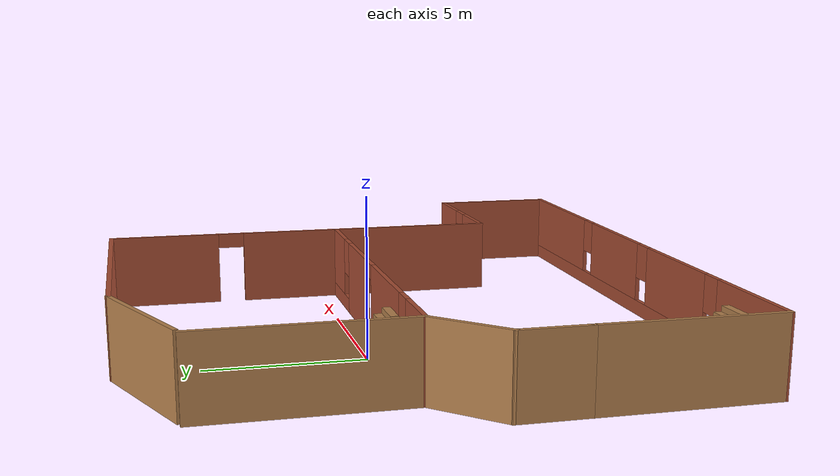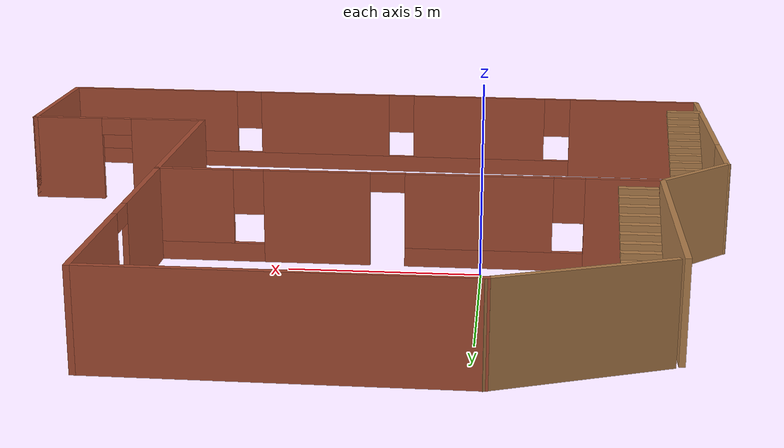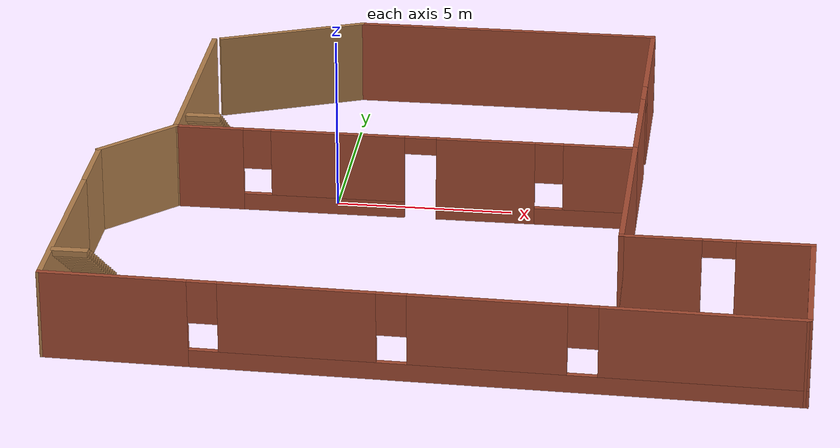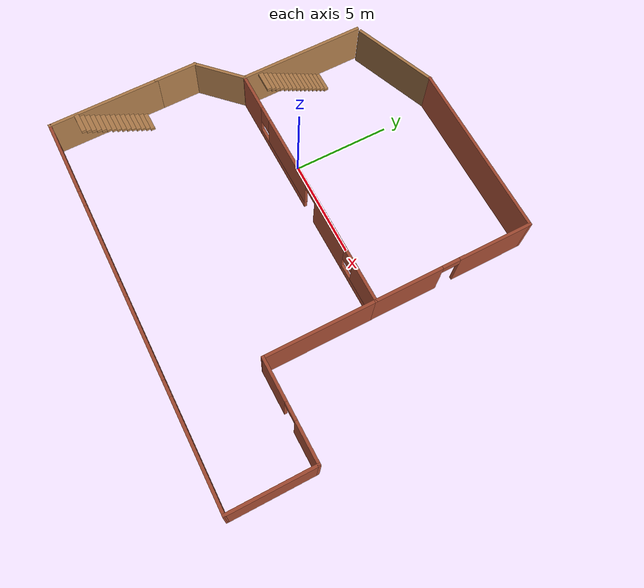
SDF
<?xml version='1.0'?>
<sdf version='1.6'>
  <model name='Mundo_pequeno'>
    <pose frame=''>3.60353 -1.53138 0 0 -0 0</pose>
    <link name='Stairs_1'>
      <visual name='Stairs_1_Visual_0'>
        <pose frame=''>-7.50565 4.98845 0.083333 0 -0 0</pose>
        <geometry>
          <box>
            <size>1 0.233333 0.166667</size>
          </box>
        </geometry>
        <material>
          <script>
            <uri>file://media/materials/scripts/gazebo.material</uri>
            <name>Gazebo/Wood</name>
          </script>
          <ambient>1 1 1 1</ambient>
        </material>
        <meta>
          <layer>0</layer>
        </meta>
      </visual>
      <collision name='Stairs_1_Collision_0'>
        <geometry>
          <box>
            <size>1 0.233333 0.166667</size>
          </box>
        </geometry>
        <pose frame=''>-7.50565 4.98845 0.083333 0 -0 0</pose>
      </collision>
      <visual name='Stairs_1_Visual_1'>
        <pose frame=''>-7.50565 4.75511 0.25 0 -0 0</pose>
        <geometry>
          <box>
            <size>1 0.233333 0.166667</size>
          </box>
        </geometry>
        <material>
          <script>
            <uri>file://media/materials/scripts/gazebo.material</uri>
            <name>Gazebo/Wood</name>
          </script>
          <ambient>1 1 1 1</ambient>
        </material>
        <meta>
          <layer>0</layer>
        </meta>
      </visual>
      <collision name='Stairs_1_Collision_1'>
        <geometry>
          <box>
            <size>1 0.233333 0.166667</size>
          </box>
        </geometry>
        <pose frame=''>-7.50565 4.75511 0.25 0 -0 0</pose>
      </collision>
      <visual name='Stairs_1_Visual_2'>
        <pose frame=''>-7.50565 4.52178 0.416667 0 -0 0</pose>
        <geometry>
          <box>
            <size>1 0.233333 0.166667</size>
          </box>
        </geometry>
        <material>
          <script>
            <uri>file://media/materials/scripts/gazebo.material</uri>
            <name>Gazebo/Wood</name>
          </script>
          <ambient>1 1 1 1</ambient>
        </material>
        <meta>
          <layer>0</layer>
        </meta>
      </visual>
      <collision name='Stairs_1_Collision_2'>
        <geometry>
          <box>
            <size>1 0.233333 0.166667</size>
          </box>
        </geometry>
        <pose frame=''>-7.50565 4.52178 0.416667 0 -0 0</pose>
      </collision>
      <visual name='Stairs_1_Visual_3'>
        <pose frame=''>-7.50565 4.28845 0.583333 0 -0 0</pose>
        <geometry>
          <box>
            <size>1 0.233333 0.166667</size>
          </box>
        </geometry>
        <material>
          <script>
            <uri>file://media/materials/scripts/gazebo.material</uri>
            <name>Gazebo/Wood</name>
          </script>
          <ambient>1 1 1 1</ambient>
        </material>
        <meta>
          <layer>0</layer>
        </meta>
      </visual>
      <collision name='Stairs_1_Collision_3'>
        <geometry>
          <box>
            <size>1 0.233333 0.166667</size>
          </box>
        </geometry>
        <pose frame=''>-7.50565 4.28845 0.583333 0 -0 0</pose>
      </collision>
      <visual name='Stairs_1_Visual_4'>
        <pose frame=''>-7.50565 4.05511 0.75 0 -0 0</pose>
        <geometry>
          <box>
            <size>1 0.233333 0.166667</size>
          </box>
        </geometry>
        <material>
          <script>
            <uri>file://media/materials/scripts/gazebo.material</uri>
            <name>Gazebo/Wood</name>
          </script>
          <ambient>1 1 1 1</ambient>
        </material>
        <meta>
          <layer>0</layer>
        </meta>
      </visual>
      <collision name='Stairs_1_Collision_4'>
        <geometry>
          <box>
            <size>1 0.233333 0.166667</size>
          </box>
        </geometry>
        <pose frame=''>-7.50565 4.05511 0.75 0 -0 0</pose>
      </collision>
      <visual name='Stairs_1_Visual_5'>
        <pose frame=''>-7.50565 3.82178 0.916667 0 -0 0</pose>
        <geometry>
          <box>
            <size>1 0.233333 0.166667</size>
          </box>
        </geometry>
        <material>
          <script>
            <uri>file://media/materials/scripts/gazebo.material</uri>
            <name>Gazebo/Wood</name>
          </script>
          <ambient>1 1 1 1</ambient>
        </material>
        <meta>
          <layer>0</layer>
        </meta>
      </visual>
      <collision name='Stairs_1_Collision_5'>
        <geometry>
          <box>
            <size>1 0.233333 0.166667</size>
          </box>
        </geometry>
        <pose frame=''>-7.50565 3.82178 0.916667 0 -0 0</pose>
      </collision>
      <visual name='Stairs_1_Visual_6'>
        <pose frame=''>-7.50565 3.58845 1.08333 0 -0 0</pose>
        <geometry>
          <box>
            <size>1 0.233333 0.166667</size>
          </box>
        </geometry>
        <material>
          <script>
            <uri>file://media/materials/scripts/gazebo.material</uri>
            <name>Gazebo/Wood</name>
          </script>
          <ambient>1 1 1 1</ambient>
        </material>
        <meta>
          <layer>0</layer>
        </meta>
      </visual>
      <collision name='Stairs_1_Collision_6'>
        <geometry>
          <box>
            <size>1 0.233333 0.166667</size>
          </box>
        </geometry>
        <pose frame=''>-7.50565 3.58845 1.08333 0 -0 0</pose>
      </collision>
      <visual name='Stairs_1_Visual_7'>
        <pose frame=''>-7.50565 3.35511 1.25 0 -0 0</pose>
        <geometry>
          <box>
            <size>1 0.233333 0.166667</size>
          </box>
        </geometry>
        <material>
          <script>
            <uri>file://media/materials/scripts/gazebo.material</uri>
            <name>Gazebo/Wood</name>
          </script>
          <ambient>1 1 1 1</ambient>
        </material>
        <meta>
          <layer>0</layer>
        </meta>
      </visual>
      <collision name='Stairs_1_Collision_7'>
        <geometry>
          <box>
            <size>1 0.233333 0.166667</size>
          </box>
        </geometry>
        <pose frame=''>-7.50565 3.35511 1.25 0 -0 0</pose>
      </collision>
      <visual name='Stairs_1_Visual_8'>
        <pose frame=''>-7.50565 3.12178 1.41667 0 -0 0</pose>
        <geometry>
          <box>
            <size>1 0.233333 0.166667</size>
          </box>
        </geometry>
        <material>
          <script>
            <uri>file://media/materials/scripts/gazebo.material</uri>
            <name>Gazebo/Wood</name>
          </script>
          <ambient>1 1 1 1</ambient>
        </material>
        <meta>
          <layer>0</layer>
        </meta>
      </visual>
      <collision name='Stairs_1_Collision_8'>
        <geometry>
          <box>
            <size>1 0.233333 0.166667</size>
          </box>
        </geometry>
        <pose frame=''>-7.50565 3.12178 1.41667 0 -0 0</pose>
      </collision>
      <visual name='Stairs_1_Visual_9'>
        <pose frame=''>-7.50565 2.88845 1.58333 0 -0 0</pose>
        <geometry>
          <box>
            <size>1 0.233333 0.166667</size>
          </box>
        </geometry>
        <material>
          <script>
            <uri>file://media/materials/scripts/gazebo.material</uri>
            <name>Gazebo/Wood</name>
          </script>
          <ambient>1 1 1 1</ambient>
        </material>
        <meta>
          <layer>0</layer>
        </meta>
      </visual>
      <collision name='Stairs_1_Collision_9'>
        <geometry>
          <box>
            <size>1 0.233333 0.166667</size>
          </box>
        </geometry>
        <pose frame=''>-7.50565 2.88845 1.58333 0 -0 0</pose>
      </collision>
      <visual name='Stairs_1_Visual_10'>
        <pose frame=''>-7.50565 2.65511 1.75 0 -0 0</pose>
        <geometry>
          <box>
            <size>1 0.233333 0.166667</size>
          </box>
        </geometry>
        <material>
          <script>
            <uri>file://media/materials/scripts/gazebo.material</uri>
            <name>Gazebo/Wood</name>
          </script>
          <ambient>1 1 1 1</ambient>
        </material>
        <meta>
          <layer>0</layer>
        </meta>
      </visual>
      <collision name='Stairs_1_Collision_10'>
        <geometry>
          <box>
            <size>1 0.233333 0.166667</size>
          </box>
        </geometry>
        <pose frame=''>-7.50565 2.65511 1.75 0 -0 0</pose>
      </collision>
      <visual name='Stairs_1_Visual_11'>
        <pose frame=''>-7.50565 2.42178 1.91667 0 -0 0</pose>
        <geometry>
          <box>
            <size>1 0.233333 0.166667</size>
          </box>
        </geometry>
        <material>
          <script>
            <uri>file://media/materials/scripts/gazebo.material</uri>
            <name>Gazebo/Wood</name>
          </script>
          <ambient>1 1 1 1</ambient>
        </material>
        <meta>
          <layer>0</layer>
        </meta>
      </visual>
      <collision name='Stairs_1_Collision_11'>
        <geometry>
          <box>
            <size>1 0.233333 0.166667</size>
          </box>
        </geometry>
        <pose frame=''>-7.50565 2.42178 1.91667 0 -0 0</pose>
      </collision>
      <visual name='Stairs_1_Visual_12'>
        <pose frame=''>-7.50565 2.18845 2.08333 0 -0 0</pose>
        <geometry>
          <box>
            <size>1 0.233333 0.166667</size>
          </box>
        </geometry>
        <material>
          <script>
            <uri>file://media/materials/scripts/gazebo.material</uri>
            <name>Gazebo/Wood</name>
          </script>
          <ambient>1 1 1 1</ambient>
        </material>
        <meta>
          <layer>0</layer>
        </meta>
      </visual>
      <collision name='Stairs_1_Collision_12'>
        <geometry>
          <box>
            <size>1 0.233333 0.166667</size>
          </box>
        </geometry>
        <pose frame=''>-7.50565 2.18845 2.08333 0 -0 0</pose>
      </collision>
      <visual name='Stairs_1_Visual_13'>
        <pose frame=''>-7.50565 1.95511 2.25 0 -0 0</pose>
        <geometry>
          <box>
            <size>1 0.233333 0.166667</size>
          </box>
        </geometry>
        <material>
          <script>
            <uri>file://media/materials/scripts/gazebo.material</uri>
            <name>Gazebo/Wood</name>
          </script>
          <ambient>1 1 1 1</ambient>
        </material>
        <meta>
          <layer>0</layer>
        </meta>
      </visual>
      <collision name='Stairs_1_Collision_13'>
        <geometry>
          <box>
            <size>1 0.233333 0.166667</size>
          </box>
        </geometry>
        <pose frame=''>-7.50565 1.95511 2.25 0 -0 0</pose>
      </collision>
      <visual name='Stairs_1_Visual_14'>
        <pose frame=''>-7.50565 1.72178 2.41667 0 -0 0</pose>
        <geometry>
          <box>
            <size>1 0.233333 0.166667</size>
          </box>
        </geometry>
        <material>
          <script>
            <uri>file://media/materials/scripts/gazebo.material</uri>
            <name>Gazebo/Wood</name>
          </script>
          <ambient>1 1 1 1</ambient>
        </material>
        <meta>
          <layer>0</layer>
        </meta>
      </visual>
      <collision name='Stairs_1_Collision_14'>
        <geometry>
          <box>
            <size>1 0.233333 0.166667</size>
          </box>
        </geometry>
        <pose frame=''>-7.50565 1.72178 2.41667 0 -0 0</pose>
      </collision>
    </link>
    <link name='Stairs_2'>
      <visual name='Stairs_2_Visual_0'>
        <pose frame=''>-9.48524 -3.99997 0.083333 0 -0 0</pose>
        <geometry>
          <box>
            <size>1 0.233333 0.166667</size>
          </box>
        </geometry>
        <material>
          <script>
            <uri>file://media/materials/scripts/gazebo.material</uri>
            <name>Gazebo/Wood</name>
          </script>
          <ambient>1 1 1 1</ambient>
        </material>
        <meta>
          <layer>0</layer>
        </meta>
      </visual>
      <collision name='Stairs_2_Collision_0'>
        <geometry>
          <box>
            <size>1 0.233333 0.166667</size>
          </box>
        </geometry>
        <pose frame=''>-9.48524 -3.99997 0.083333 0 -0 0</pose>
      </collision>
      <visual name='Stairs_2_Visual_1'>
        <pose frame=''>-9.48524 -4.23331 0.25 0 -0 0</pose>
        <geometry>
          <box>
            <size>1 0.233333 0.166667</size>
          </box>
        </geometry>
        <material>
          <script>
            <uri>file://media/materials/scripts/gazebo.material</uri>
            <name>Gazebo/Wood</name>
          </script>
          <ambient>1 1 1 1</ambient>
        </material>
        <meta>
          <layer>0</layer>
        </meta>
      </visual>
      <collision name='Stairs_2_Collision_1'>
        <geometry>
          <box>
            <size>1 0.233333 0.166667</size>
          </box>
        </geometry>
        <pose frame=''>-9.48524 -4.23331 0.25 0 -0 0</pose>
      </collision>
      <visual name='Stairs_2_Visual_2'>
        <pose frame=''>-9.48524 -4.46664 0.416667 0 -0 0</pose>
        <geometry>
          <box>
            <size>1 0.233333 0.166667</size>
          </box>
        </geometry>
        <material>
          <script>
            <uri>file://media/materials/scripts/gazebo.material</uri>
            <name>Gazebo/Wood</name>
          </script>
          <ambient>1 1 1 1</ambient>
        </material>
        <meta>
          <layer>0</layer>
        </meta>
      </visual>
      <collision name='Stairs_2_Collision_2'>
        <geometry>
          <box>
            <size>1 0.233333 0.166667</size>
          </box>
        </geometry>
        <pose frame=''>-9.48524 -4.46664 0.416667 0 -0 0</pose>
      </collision>
      <visual name='Stairs_2_Visual_3'>
        <pose frame=''>-9.48524 -4.69997 0.583333 0 -0 0</pose>
        <geometry>
          <box>
            <size>1 0.233333 0.166667</size>
          </box>
        </geometry>
        <material>
          <script>
            <uri>file://media/materials/scripts/gazebo.material</uri>
            <name>Gazebo/Wood</name>
          </script>
          <ambient>1 1 1 1</ambient>
        </material>
        <meta>
          <layer>0</layer>
        </meta>
      </visual>
      <collision name='Stairs_2_Collision_3'>
        <geometry>
          <box>
            <size>1 0.233333 0.166667</size>
          </box>
        </geometry>
        <pose frame=''>-9.48524 -4.69997 0.583333 0 -0 0</pose>
      </collision>
      <visual name='Stairs_2_Visual_4'>
        <pose frame=''>-9.48524 -4.93331 0.75 0 -0 0</pose>
        <geometry>
          <box>
            <size>1 0.233333 0.166667</size>
          </box>
        </geometry>
        <material>
          <script>
            <uri>file://media/materials/scripts/gazebo.material</uri>
            <name>Gazebo/Wood</name>
          </script>
          <ambient>1 1 1 1</ambient>
        </material>
        <meta>
          <layer>0</layer>
        </meta>
      </visual>
      <collision name='Stairs_2_Collision_4'>
        <geometry>
          <box>
            <size>1 0.233333 0.166667</size>
          </box>
        </geometry>
        <pose frame=''>-9.48524 -4.93331 0.75 0 -0 0</pose>
      </collision>
      <visual name='Stairs_2_Visual_5'>
        <pose frame=''>-9.48524 -5.16664 0.916667 0 -0 0</pose>
        <geometry>
          <box>
            <size>1 0.233333 0.166667</size>
          </box>
        </geometry>
        <material>
          <script>
            <uri>file://media/materials/scripts/gazebo.material</uri>
            <name>Gazebo/Wood</name>
          </script>
          <ambient>1 1 1 1</ambient>
        </material>
        <meta>
          <layer>0</layer>
        </meta>
      </visual>
      <collision name='Stairs_2_Collision_5'>
        <geometry>
          <box>
            <size>1 0.233333 0.166667</size>
          </box>
        </geometry>
        <pose frame=''>-9.48524 -5.16664 0.916667 0 -0 0</pose>
      </collision>
      <visual name='Stairs_2_Visual_6'>
        <pose frame=''>-9.48524 -5.39997 1.08333 0 -0 0</pose>
        <geometry>
          <box>
            <size>1 0.233333 0.166667</size>
          </box>
        </geometry>
        <material>
          <script>
            <uri>file://media/materials/scripts/gazebo.material</uri>
            <name>Gazebo/Wood</name>
          </script>
          <ambient>1 1 1 1</ambient>
        </material>
        <meta>
          <layer>0</layer>
        </meta>
      </visual>
      <collision name='Stairs_2_Collision_6'>
        <geometry>
          <box>
            <size>1 0.233333 0.166667</size>
          </box>
        </geometry>
        <pose frame=''>-9.48524 -5.39997 1.08333 0 -0 0</pose>
      </collision>
      <visual name='Stairs_2_Visual_7'>
        <pose frame=''>-9.48524 -5.63331 1.25 0 -0 0</pose>
        <geometry>
          <box>
            <size>1 0.233333 0.166667</size>
          </box>
        </geometry>
        <material>
          <script>
            <uri>file://media/materials/scripts/gazebo.material</uri>
            <name>Gazebo/Wood</name>
          </script>
          <ambient>1 1 1 1</ambient>
        </material>
        <meta>
          <layer>0</layer>
        </meta>
      </visual>
      <collision name='Stairs_2_Collision_7'>
        <geometry>
          <box>
            <size>1 0.233333 0.166667</size>
          </box>
        </geometry>
        <pose frame=''>-9.48524 -5.63331 1.25 0 -0 0</pose>
      </collision>
      <visual name='Stairs_2_Visual_8'>
        <pose frame=''>-9.48524 -5.86664 1.41667 0 -0 0</pose>
        <geometry>
          <box>
            <size>1 0.233333 0.166667</size>
          </box>
        </geometry>
        <material>
          <script>
            <uri>file://media/materials/scripts/gazebo.material</uri>
            <name>Gazebo/Wood</name>
          </script>
          <ambient>1 1 1 1</ambient>
        </material>
        <meta>
          <layer>0</layer>
        </meta>
      </visual>
      <collision name='Stairs_2_Collision_8'>
        <geometry>
          <box>
            <size>1 0.233333 0.166667</size>
          </box>
        </geometry>
        <pose frame=''>-9.48524 -5.86664 1.41667 0 -0 0</pose>
      </collision>
      <visual name='Stairs_2_Visual_9'>
        <pose frame=''>-9.48524 -6.09997 1.58333 0 -0 0</pose>
        <geometry>
          <box>
            <size>1 0.233333 0.166667</size>
          </box>
        </geometry>
        <material>
          <script>
            <uri>file://media/materials/scripts/gazebo.material</uri>
            <name>Gazebo/Wood</name>
          </script>
          <ambient>1 1 1 1</ambient>
        </material>
        <meta>
          <layer>0</layer>
        </meta>
      </visual>
      <collision name='Stairs_2_Collision_9'>
        <geometry>
          <box>
            <size>1 0.233333 0.166667</size>
          </box>
        </geometry>
        <pose frame=''>-9.48524 -6.09997 1.58333 0 -0 0</pose>
      </collision>
      <visual name='Stairs_2_Visual_10'>
        <pose frame=''>-9.48524 -6.33331 1.75 0 -0 0</pose>
        <geometry>
          <box>
            <size>1 0.233333 0.166667</size>
          </box>
        </geometry>
        <material>
          <script>
            <uri>file://media/materials/scripts/gazebo.material</uri>
            <name>Gazebo/Wood</name>
          </script>
          <ambient>1 1 1 1</ambient>
        </material>
        <meta>
          <layer>0</layer>
        </meta>
      </visual>
      <collision name='Stairs_2_Collision_10'>
        <geometry>
          <box>
            <size>1 0.233333 0.166667</size>
          </box>
        </geometry>
        <pose frame=''>-9.48524 -6.33331 1.75 0 -0 0</pose>
      </collision>
      <visual name='Stairs_2_Visual_11'>
        <pose frame=''>-9.48524 -6.56664 1.91667 0 -0 0</pose>
        <geometry>
          <box>
            <size>1 0.233333 0.166667</size>
          </box>
        </geometry>
        <material>
          <script>
            <uri>file://media/materials/scripts/gazebo.material</uri>
            <name>Gazebo/Wood</name>
          </script>
          <ambient>1 1 1 1</ambient>
        </material>
        <meta>
          <layer>0</layer>
        </meta>
      </visual>
      <collision name='Stairs_2_Collision_11'>
        <geometry>
          <box>
            <size>1 0.233333 0.166667</size>
          </box>
        </geometry>
        <pose frame=''>-9.48524 -6.56664 1.91667 0 -0 0</pose>
      </collision>
      <visual name='Stairs_2_Visual_12'>
        <pose frame=''>-9.48524 -6.79997 2.08333 0 -0 0</pose>
        <geometry>
          <box>
            <size>1 0.233333 0.166667</size>
          </box>
        </geometry>
        <material>
          <script>
            <uri>file://media/materials/scripts/gazebo.material</uri>
            <name>Gazebo/Wood</name>
          </script>
          <ambient>1 1 1 1</ambient>
        </material>
        <meta>
          <layer>0</layer>
        </meta>
      </visual>
      <collision name='Stairs_2_Collision_12'>
        <geometry>
          <box>
            <size>1 0.233333 0.166667</size>
          </box>
        </geometry>
        <pose frame=''>-9.48524 -6.79997 2.08333 0 -0 0</pose>
      </collision>
      <visual name='Stairs_2_Visual_13'>
        <pose frame=''>-9.48524 -7.03331 2.25 0 -0 0</pose>
        <geometry>
          <box>
            <size>1 0.233333 0.166667</size>
          </box>
        </geometry>
        <material>
          <script>
            <uri>file://media/materials/scripts/gazebo.material</uri>
            <name>Gazebo/Wood</name>
          </script>
          <ambient>1 1 1 1</ambient>
        </material>
        <meta>
          <layer>0</layer>
        </meta>
      </visual>
      <collision name='Stairs_2_Collision_13'>
        <geometry>
          <box>
            <size>1 0.233333 0.166667</size>
          </box>
        </geometry>
        <pose frame=''>-9.48524 -7.03331 2.25 0 -0 0</pose>
      </collision>
      <visual name='Stairs_2_Visual_14'>
        <pose frame=''>-9.48524 -7.26664 2.41667 0 -0 0</pose>
        <geometry>
          <box>
            <size>1 0.233333 0.166667</size>
          </box>
        </geometry>
        <material>
          <script>
            <uri>file://media/materials/scripts/gazebo.material</uri>
            <name>Gazebo/Wood</name>
          </script>
          <ambient>1 1 1 1</ambient>
        </material>
        <meta>
          <layer>0</layer>
        </meta>
      </visual>
      <collision name='Stairs_2_Collision_14'>
        <geometry>
          <box>
            <size>1 0.233333 0.166667</size>
          </box>
        </geometry>
        <pose frame=''>-9.48524 -7.26664 2.41667 0 -0 0</pose>
      </collision>
    </link>
    <link name='Wall_21'>
      <collision name='Wall_21_Collision'>
        <geometry>
          <box>
            <size>2.25 0.15 2.5</size>
          </box>
        </geometry>
        <pose frame=''>0 0 1.25 0 -0 0</pose>
      </collision>
      <visual name='Wall_21_Visual'>
        <pose frame=''>0 0 1.25 0 -0 0</pose>
        <geometry>
          <box>
            <size>2.25 0.15 2.5</size>
          </box>
        </geometry>
        <material>
          <script>
            <uri>file://media/materials/scripts/gazebo.material</uri>
            <name>Gazebo/Wood</name>
          </script>
          <ambient>1 1 1 1</ambient>
        </material>
        <meta>
          <layer>0</layer>
        </meta>
      </visual>
      <pose frame=''>-10.0045 -1.97413 0 0 -0 1.5708</pose>
    </link>
    <link name='Wall_22'>
      <collision name='Wall_22_Collision'>
        <geometry>
          <box>
            <size>2.75 0.15 2.5</size>
          </box>
        </geometry>
        <pose frame=''>0 0 1.25 0 -0 0</pose>
      </collision>
      <visual name='Wall_22_Visual'>
        <pose frame=''>0 0 1.25 0 -0 0</pose>
        <geometry>
          <box>
            <size>2.75 0.15 2.5</size>
          </box>
        </geometry>
        <material>
          <script>
            <uri>file://media/materials/scripts/gazebo.material</uri>
            <name>Gazebo/Wood</name>
          </script>
          <ambient>1 1 1 1</ambient>
        </material>
        <meta>
          <layer>0</layer>
        </meta>
      </visual>
      <pose frame=''>-9.08523 -0.004896 0 0 -0 0.785398</pose>
    </link>
    <link name='Wall_23'>
      <pose frame=''>-1.61599 0.914343 0 0 -0 0</pose>
      <visual name='Wall_23_Visual_0'>
        <pose frame=''>-5.61042 0 1.25 0 -0 0</pose>
        <geometry>
          <box>
            <size>2.02916 0.15 2.5</size>
          </box>
        </geometry>
        <material>
          <script>
            <uri>file://media/materials/scripts/gazebo.material</uri>
            <name>Gazebo/Bricks</name>
          </script>
          <ambient>1 1 1 1</ambient>
        </material>
        <meta>
          <layer>0</layer>
        </meta>
      </visual>
      <collision name='Wall_23_Collision_0'>
        <geometry>
          <box>
            <size>2.02916 0.15 2.5</size>
          </box>
        </geometry>
        <pose frame=''>-5.61042 0 1.25 0 -0 0</pose>
      </collision>
      <visual name='Wall_23_Visual_1'>
        <pose frame=''>2.32954 0 1.25 0 -0 0</pose>
        <geometry>
          <box>
            <size>2.80479 0.15 2.5</size>
          </box>
        </geometry>
        <material>
          <script>
            <uri>file://media/materials/scripts/gazebo.material</uri>
            <name>Gazebo/Bricks</name>
          </script>
          <ambient>1 1 1 1</ambient>
        </material>
        <meta>
          <layer>0</layer>
        </meta>
      </visual>
      <collision name='Wall_23_Collision_1'>
        <geometry>
          <box>
            <size>2.80479 0.15 2.5</size>
          </box>
        </geometry>
        <pose frame=''>2.32954 0 1.25 0 -0 0</pose>
      </collision>
      <visual name='Wall_23_Visual_2'>
        <pose frame=''>-2.28435 0 0.25 0 -0 0</pose>
        <geometry>
          <box>
            <size>4.62299 0.15 0.5</size>
          </box>
        </geometry>
        <material>
          <script>
            <uri>file://media/materials/scripts/gazebo.material</uri>
            <name>Gazebo/Bricks</name>
          </script>
          <ambient>1 1 1 1</ambient>
        </material>
        <meta>
          <layer>0</layer>
        </meta>
      </visual>
      <collision name='Wall_23_Collision_2'>
        <geometry>
          <box>
            <size>4.62299 0.15 0.5</size>
          </box>
        </geometry>
        <pose frame=''>-2.28435 0 0.25 0 -0 0</pose>
      </collision>
      <visual name='Wall_23_Visual_3'>
        <pose frame=''>5.17847 0 0.25 0 -0 0</pose>
        <geometry>
          <box>
            <size>2.89306 0.15 0.5</size>
          </box>
        </geometry>
        <material>
          <script>
            <uri>file://media/materials/scripts/gazebo.material</uri>
            <name>Gazebo/Bricks</name>
          </script>
          <ambient>1 1 1 1</ambient>
        </material>
        <meta>
          <layer>0</layer>
        </meta>
      </visual>
      <collision name='Wall_23_Collision_3'>
        <geometry>
          <box>
            <size>2.89306 0.15 0.5</size>
          </box>
        </geometry>
        <pose frame=''>5.17847 0 0.25 0 -0 0</pose>
      </collision>
      <visual name='Wall_23_Visual_4'>
        <pose frame=''>-1.88435 0 1.5 0 -0 0</pose>
        <geometry>
          <box>
            <size>3.82299 0.15 2</size>
          </box>
        </geometry>
        <material>
          <script>
            <uri>file://media/materials/scripts/gazebo.material</uri>
            <name>Gazebo/Bricks</name>
          </script>
          <ambient>1 1 1 1</ambient>
        </material>
        <meta>
          <layer>0</layer>
        </meta>
      </visual>
      <collision name='Wall_23_Collision_4'>
        <geometry>
          <box>
            <size>3.82299 0.15 2</size>
          </box>
        </geometry>
        <pose frame=''>-1.88435 0 1.5 0 -0 0</pose>
      </collision>
      <visual name='Wall_23_Visual_5'>
        <pose frame=''>-1.88435 0 1.5 0 -0 0</pose>
        <geometry>
          <box>
            <size>3.82299 0.15 2</size>
          </box>
        </geometry>
        <material>
          <script>
            <uri>file://media/materials/scripts/gazebo.material</uri>
            <name>Gazebo/Bricks</name>
          </script>
          <ambient>1 1 1 1</ambient>
        </material>
        <meta>
          <layer>0</layer>
        </meta>
      </visual>
      <collision name='Wall_23_Collision_5'>
        <geometry>
          <box>
            <size>3.82299 0.15 2</size>
          </box>
        </geometry>
        <pose frame=''>-1.88435 0 1.5 0 -0 0</pose>
      </collision>
      <visual name='Wall_23_Visual_6'>
        <pose frame=''>5.57847 0 1.5 0 -0 0</pose>
        <geometry>
          <box>
            <size>2.09306 0.15 2</size>
          </box>
        </geometry>
        <material>
          <script>
            <uri>file://media/materials/scripts/gazebo.material</uri>
            <name>Gazebo/Bricks</name>
          </script>
          <ambient>1 1 1 1</ambient>
        </material>
        <meta>
          <layer>0</layer>
        </meta>
      </visual>
      <collision name='Wall_23_Collision_6'>
        <geometry>
          <box>
            <size>2.09306 0.15 2</size>
          </box>
        </geometry>
        <pose frame=''>5.57847 0 1.5 0 -0 0</pose>
      </collision>
      <visual name='Wall_23_Visual_7'>
        <pose frame=''>-4.19584 0 1.9 0 -0 0</pose>
        <geometry>
          <box>
            <size>0.8 0.15 1.2</size>
          </box>
        </geometry>
        <material>
          <script>
            <uri>file://media/materials/scripts/gazebo.material</uri>
            <name>Gazebo/Bricks</name>
          </script>
          <ambient>1 1 1 1</ambient>
        </material>
        <meta>
          <layer>0</layer>
        </meta>
      </visual>
      <collision name='Wall_23_Collision_7'>
        <geometry>
          <box>
            <size>0.8 0.15 1.2</size>
          </box>
        </geometry>
        <pose frame=''>-4.19584 0 1.9 0 -0 0</pose>
      </collision>
      <visual name='Wall_23_Visual_8'>
        <pose frame=''>4.13194 0 1.9 0 -0 0</pose>
        <geometry>
          <box>
            <size>0.8 0.15 1.2</size>
          </box>
        </geometry>
        <material>
          <script>
            <uri>file://media/materials/scripts/gazebo.material</uri>
            <name>Gazebo/Bricks</name>
          </script>
          <ambient>1 1 1 1</ambient>
        </material>
        <meta>
          <layer>0</layer>
        </meta>
      </visual>
      <collision name='Wall_23_Collision_8'>
        <geometry>
          <box>
            <size>0.8 0.15 1.2</size>
          </box>
        </geometry>
        <pose frame=''>4.13194 0 1.9 0 -0 0</pose>
      </collision>
      <visual name='Wall_23_Visual_9'>
        <pose frame=''>0.477144 0 2.25 0 -0 0</pose>
        <geometry>
          <box>
            <size>0.9 0.15 0.5</size>
          </box>
        </geometry>
        <material>
          <script>
            <uri>file://media/materials/scripts/gazebo.material</uri>
            <name>Gazebo/Bricks</name>
          </script>
          <ambient>1 1 1 1</ambient>
        </material>
        <meta>
          <layer>0</layer>
        </meta>
      </visual>
      <collision name='Wall_23_Collision_9'>
        <geometry>
          <box>
            <size>0.9 0.15 0.5</size>
          </box>
        </geometry>
        <pose frame=''>0.477144 0 2.25 0 -0 0</pose>
      </collision>
      <visual name='Wall_23_Visual_10'>
        <pose frame=''>0.477144 0 2.25 0 -0 0</pose>
        <geometry>
          <box>
            <size>0.9 0.15 0.5</size>
          </box>
        </geometry>
        <material>
          <script>
            <uri>file://media/materials/scripts/gazebo.material</uri>
            <name>Gazebo/Bricks</name>
          </script>
          <ambient>1 1 1 1</ambient>
        </material>
        <meta>
          <layer>0</layer>
        </meta>
      </visual>
      <collision name='Wall_23_Collision_10'>
        <geometry>
          <box>
            <size>0.9 0.15 0.5</size>
          </box>
        </geometry>
        <pose frame=''>0.477144 0 2.25 0 -0 0</pose>
      </collision>
    </link>
    <link name='Wall_24'>
      <collision name='Wall_24_Collision'>
        <geometry>
          <box>
            <size>5.75 0.15 2.5</size>
          </box>
        </geometry>
        <pose frame=''>0 0 1.25 0 -0 0</pose>
      </collision>
      <visual name='Wall_24_Visual'>
        <pose frame=''>0 0 1.25 0 -0 0</pose>
        <geometry>
          <box>
            <size>5.75 0.15 2.5</size>
          </box>
        </geometry>
        <material>
          <script>
            <uri>file://media/materials/scripts/gazebo.material</uri>
            <name>Gazebo/Bricks</name>
          </script>
          <ambient>1 1 1 1</ambient>
        </material>
        <meta>
          <layer>0</layer>
        </meta>
      </visual>
      <pose frame=''>4.93401 -1.88566 0 0 -0 -1.5708</pose>
    </link>
    <link name='Wall_25'>
      <pose frame=''>7.48401 -4.68566 0 0 -0 0</pose>
      <visual name='Wall_25_Visual_0'>
        <pose frame=''>-1.50924 0 1.25 0 -0 0</pose>
        <geometry>
          <box>
            <size>2.23152 0.15 2.5</size>
          </box>
        </geometry>
        <material>
          <script>
            <uri>file://media/materials/scripts/gazebo.material</uri>
            <name>Gazebo/Bricks</name>
          </script>
          <ambient>1 1 1 1</ambient>
        </material>
        <meta>
          <layer>0</layer>
        </meta>
      </visual>
      <collision name='Wall_25_Collision_0'>
        <geometry>
          <box>
            <size>2.23152 0.15 2.5</size>
          </box>
        </geometry>
        <pose frame=''>-1.50924 0 1.25 0 -0 0</pose>
      </collision>
      <visual name='Wall_25_Visual_1'>
        <pose frame=''>1.56576 0 1.25 0 -0 0</pose>
        <geometry>
          <box>
            <size>2.11848 0.15 2.5</size>
          </box>
        </geometry>
        <material>
          <script>
            <uri>file://media/materials/scripts/gazebo.material</uri>
            <name>Gazebo/Bricks</name>
          </script>
          <ambient>1 1 1 1</ambient>
        </material>
        <meta>
          <layer>0</layer>
        </meta>
      </visual>
      <collision name='Wall_25_Collision_1'>
        <geometry>
          <box>
            <size>2.11848 0.15 2.5</size>
          </box>
        </geometry>
        <pose frame=''>1.56576 0 1.25 0 -0 0</pose>
      </collision>
      <visual name='Wall_25_Visual_2'>
        <pose frame=''>0.05652 0 2.25 0 -0 0</pose>
        <geometry>
          <box>
            <size>0.9 0.15 0.5</size>
          </box>
        </geometry>
        <material>
          <script>
            <uri>file://media/materials/scripts/gazebo.material</uri>
            <name>Gazebo/Bricks</name>
          </script>
          <ambient>1 1 1 1</ambient>
        </material>
        <meta>
          <layer>0</layer>
        </meta>
      </visual>
      <collision name='Wall_25_Collision_2'>
        <geometry>
          <box>
            <size>0.9 0.15 0.5</size>
          </box>
        </geometry>
        <pose frame=''>0.05652 0 2.25 0 -0 0</pose>
      </collision>
    </link>
    <link name='Wall_26'>
      <collision name='Wall_26_Collision'>
        <geometry>
          <box>
            <size>4.5 0.15 2.5</size>
          </box>
        </geometry>
        <pose frame=''>0 0 1.25 0 -0 0</pose>
      </collision>
      <visual name='Wall_26_Visual'>
        <pose frame=''>0 0 1.25 0 -0 0</pose>
        <geometry>
          <box>
            <size>4.5 0.15 2.5</size>
          </box>
        </geometry>
        <material>
          <script>
            <uri>file://media/materials/scripts/gazebo.material</uri>
            <name>Gazebo/Bricks</name>
          </script>
          <ambient>1 1 1 1</ambient>
        </material>
        <meta>
          <layer>0</layer>
        </meta>
      </visual>
      <pose frame=''>10.034 -6.86066 0 0 -0 -1.5708</pose>
    </link>
    <link name='Wall_28'>
      <pose frame=''>4.93401 4.96434 0 0 -0 1.5708</pose>
      <visual name='Wall_28_Visual_0'>
        <pose frame=''>-2.36983 0 1.25 0 -0 0</pose>
        <geometry>
          <box>
            <size>3.51034 0.15 2.5</size>
          </box>
        </geometry>
        <material>
          <script>
            <uri>file://media/materials/scripts/gazebo.material</uri>
            <name>Gazebo/Bricks</name>
          </script>
          <ambient>1 1 1 1</ambient>
        </material>
        <meta>
          <layer>0</layer>
        </meta>
      </visual>
      <collision name='Wall_28_Collision_0'>
        <geometry>
          <box>
            <size>3.51034 0.15 2.5</size>
          </box>
        </geometry>
        <pose frame=''>-2.36983 0 1.25 0 -0 0</pose>
      </collision>
      <visual name='Wall_28_Visual_1'>
        <pose frame=''>2.20517 0 1.25 0 -0 0</pose>
        <geometry>
          <box>
            <size>3.83966 0.15 2.5</size>
          </box>
        </geometry>
        <material>
          <script>
            <uri>file://media/materials/scripts/gazebo.material</uri>
            <name>Gazebo/Bricks</name>
          </script>
          <ambient>1 1 1 1</ambient>
        </material>
        <meta>
          <layer>0</layer>
        </meta>
      </visual>
      <collision name='Wall_28_Collision_1'>
        <geometry>
          <box>
            <size>3.83966 0.15 2.5</size>
          </box>
        </geometry>
        <pose frame=''>2.20517 0 1.25 0 -0 0</pose>
      </collision>
      <visual name='Wall_28_Visual_2'>
        <pose frame=''>-0.164661 0 2.25 0 -0 0</pose>
        <geometry>
          <box>
            <size>0.9 0.15 0.5</size>
          </box>
        </geometry>
        <material>
          <script>
            <uri>file://media/materials/scripts/gazebo.material</uri>
            <name>Gazebo/Bricks</name>
          </script>
          <ambient>1 1 1 1</ambient>
        </material>
        <meta>
          <layer>0</layer>
        </meta>
      </visual>
      <collision name='Wall_28_Collision_2'>
        <geometry>
          <box>
            <size>0.9 0.15 0.5</size>
          </box>
        </geometry>
        <pose frame=''>-0.164661 0 2.25 0 -0 0</pose>
      </collision>
    </link>
    <link name='Wall_29'>
      <collision name='Wall_29_Collision'>
        <geometry>
          <box>
            <size>9 0.15 2.5</size>
          </box>
        </geometry>
        <pose frame=''>0 0 1.25 0 -0 0</pose>
      </collision>
      <visual name='Wall_29_Visual'>
        <pose frame=''>0 0 1.25 0 -0 0</pose>
        <geometry>
          <box>
            <size>9 0.15 2.5</size>
          </box>
        </geometry>
        <material>
          <script>
            <uri>file://media/materials/scripts/gazebo.material</uri>
            <name>Gazebo/Bricks</name>
          </script>
          <ambient>1 1 1 1</ambient>
        </material>
        <meta>
          <layer>0</layer>
        </meta>
      </visual>
      <pose frame=''>0.509009 9.01434 0 0 -0 3.14159</pose>
    </link>
    <link name='Wall_31'>
      <collision name='Wall_31_Collision'>
        <geometry>
          <box>
            <size>6.5 0.15 2.5</size>
          </box>
        </geometry>
        <pose frame=''>0 0 1.25 0 -0 0</pose>
      </collision>
      <visual name='Wall_31_Visual'>
        <pose frame=''>0 0 1.25 0 -0 0</pose>
        <geometry>
          <box>
            <size>6.5 0.15 2.5</size>
          </box>
        </geometry>
        <material>
          <script>
            <uri>file://media/materials/scripts/gazebo.material</uri>
            <name>Gazebo/Wood</name>
          </script>
          <ambient>1 1 1 1</ambient>
        </material>
        <meta>
          <layer>0</layer>
        </meta>
      </visual>
      <pose frame=''>-8.16599 4.08934 0 0 -0 1.5708</pose>
    </link>
    <link name='Wall_51'>
      <collision name='Wall_51_Collision'>
        <geometry>
          <box>
            <size>5.75 0.15 2.5</size>
          </box>
        </geometry>
        <pose frame=''>0 0 1.25 0 -0 0</pose>
      </collision>
      <visual name='Wall_51_Visual'>
        <pose frame=''>0 0 1.25 0 -0 0</pose>
        <geometry>
          <box>
            <size>5.75 0.15 2.5</size>
          </box>
        </geometry>
        <material>
          <script>
            <uri>file://media/materials/scripts/gazebo.material</uri>
            <name>Gazebo/Wood</name>
          </script>
          <ambient>1 1 1 1</ambient>
        </material>
        <meta>
          <layer>0</layer>
        </meta>
      </visual>
      <pose frame=''>-10.0045 -5.82414 0 0 -0 -1.5708</pose>
    </link>
    <link name='Wall_52'>
      <pose frame=''>0.014771 -8.8299 0 0 -0 -0.020534</pose>
      <visual name='Wall_52_Visual_0'>
        <pose frame=''>-8.0981 0 1.25 0 -0 0</pose>
        <geometry>
          <box>
            <size>3.9965 0.15 2.5</size>
          </box>
        </geometry>
        <material>
          <script>
            <uri>file://media/materials/scripts/gazebo.material</uri>
            <name>Gazebo/Bricks</name>
          </script>
          <ambient>1 1 1 1</ambient>
        </material>
        <meta>
          <layer>0</layer>
        </meta>
      </visual>
      <collision name='Wall_52_Collision_0'>
        <geometry>
          <box>
            <size>3.9965 0.15 2.5</size>
          </box>
        </geometry>
        <pose frame=''>-8.0981 0 1.25 0 -0 0</pose>
      </collision>
      <visual name='Wall_52_Visual_1'>
        <pose frame=''>1.99825 0 0.25 0 -0 0</pose>
        <geometry>
          <box>
            <size>16.1962 0.15 0.5</size>
          </box>
        </geometry>
        <material>
          <script>
            <uri>file://media/materials/scripts/gazebo.material</uri>
            <name>Gazebo/Bricks</name>
          </script>
          <ambient>1 1 1 1</ambient>
        </material>
        <meta>
          <layer>0</layer>
        </meta>
      </visual>
      <collision name='Wall_52_Collision_1'>
        <geometry>
          <box>
            <size>16.1962 0.15 0.5</size>
          </box>
        </geometry>
        <pose frame=''>1.99825 0 0.25 0 -0 0</pose>
      </collision>
      <visual name='Wall_52_Visual_2'>
        <pose frame=''>-3.21306 0 1.5 0 -0 0</pose>
        <geometry>
          <box>
            <size>4.17359 0.15 2</size>
          </box>
        </geometry>
        <material>
          <script>
            <uri>file://media/materials/scripts/gazebo.material</uri>
            <name>Gazebo/Bricks</name>
          </script>
          <ambient>1 1 1 1</ambient>
        </material>
        <meta>
          <layer>0</layer>
        </meta>
      </visual>
      <collision name='Wall_52_Collision_2'>
        <geometry>
          <box>
            <size>4.17359 0.15 2</size>
          </box>
        </geometry>
        <pose frame=''>-3.21306 0 1.5 0 -0 0</pose>
      </collision>
      <visual name='Wall_52_Visual_3'>
        <pose frame=''>1.76273 0 1.5 0 -0 0</pose>
        <geometry>
          <box>
            <size>4.17798 0.15 2</size>
          </box>
        </geometry>
        <material>
          <script>
            <uri>file://media/materials/scripts/gazebo.material</uri>
            <name>Gazebo/Bricks</name>
          </script>
          <ambient>1 1 1 1</ambient>
        </material>
        <meta>
          <layer>0</layer>
        </meta>
      </visual>
      <collision name='Wall_52_Collision_3'>
        <geometry>
          <box>
            <size>4.17798 0.15 2</size>
          </box>
        </geometry>
        <pose frame=''>1.76273 0 1.5 0 -0 0</pose>
      </collision>
      <visual name='Wall_52_Visual_4'>
        <pose frame=''>7.37403 0 1.5 0 -0 0</pose>
        <geometry>
          <box>
            <size>5.44464 0.15 2</size>
          </box>
        </geometry>
        <material>
          <script>
            <uri>file://media/materials/scripts/gazebo.material</uri>
            <name>Gazebo/Bricks</name>
          </script>
          <ambient>1 1 1 1</ambient>
        </material>
        <meta>
          <layer>0</layer>
        </meta>
      </visual>
      <collision name='Wall_52_Collision_4'>
        <geometry>
          <box>
            <size>5.44464 0.15 2</size>
          </box>
        </geometry>
        <pose frame=''>7.37403 0 1.5 0 -0 0</pose>
      </collision>
      <visual name='Wall_52_Visual_5'>
        <pose frame=''>-5.69985 0 1.9 0 -0 0</pose>
        <geometry>
          <box>
            <size>0.8 0.15 1.2</size>
          </box>
        </geometry>
        <material>
          <script>
            <uri>file://media/materials/scripts/gazebo.material</uri>
            <name>Gazebo/Bricks</name>
          </script>
          <ambient>1 1 1 1</ambient>
        </material>
        <meta>
          <layer>0</layer>
        </meta>
      </visual>
      <collision name='Wall_52_Collision_5'>
        <geometry>
          <box>
            <size>0.8 0.15 1.2</size>
          </box>
        </geometry>
        <pose frame=''>-5.69985 0 1.9 0 -0 0</pose>
      </collision>
      <visual name='Wall_52_Visual_6'>
        <pose frame=''>-0.726265 0 1.9 0 -0 0</pose>
        <geometry>
          <box>
            <size>0.8 0.15 1.2</size>
          </box>
        </geometry>
        <material>
          <script>
            <uri>file://media/materials/scripts/gazebo.material</uri>
            <name>Gazebo/Bricks</name>
          </script>
          <ambient>1 1 1 1</ambient>
        </material>
        <meta>
          <layer>0</layer>
        </meta>
      </visual>
      <collision name='Wall_52_Collision_6'>
        <geometry>
          <box>
            <size>0.8 0.15 1.2</size>
          </box>
        </geometry>
        <pose frame=''>-0.726265 0 1.9 0 -0 0</pose>
      </collision>
      <visual name='Wall_52_Visual_7'>
        <pose frame=''>4.25171 0 1.9 0 -0 0</pose>
        <geometry>
          <box>
            <size>0.8 0.15 1.2</size>
          </box>
        </geometry>
        <material>
          <script>
            <uri>file://media/materials/scripts/gazebo.material</uri>
            <name>Gazebo/Bricks</name>
          </script>
          <ambient>1 1 1 1</ambient>
        </material>
        <meta>
          <layer>0</layer>
        </meta>
      </visual>
      <collision name='Wall_52_Collision_7'>
        <geometry>
          <box>
            <size>0.8 0.15 1.2</size>
          </box>
        </geometry>
        <pose frame=''>4.25171 0 1.9 0 -0 0</pose>
      </collision>
    </link>
    <link name='Wall_57'>
      <collision name='Wall_57_Collision'>
        <geometry>
          <box>
            <size>4.49198 0.15 2.5</size>
          </box>
        </geometry>
        <pose frame=''>0 0 1.25 0 -0 0</pose>
      </collision>
      <visual name='Wall_57_Visual'>
        <pose frame=''>0 0 1.25 0 -0 0</pose>
        <geometry>
          <box>
            <size>4.49198 0.15 2.5</size>
          </box>
        </geometry>
        <material>
          <script>
            <uri>file://media/materials/scripts/gazebo.material</uri>
            <name>Gazebo/Wood</name>
          </script>
          <ambient>1 1 1 1</ambient>
        </material>
        <meta>
          <layer>0</layer>
        </meta>
      </visual>
      <pose frame=''>-5.92483 8.19107 0 0 -0 0.388947</pose>
    </link>
    <static>1</static>
  </model>
</sdf>
